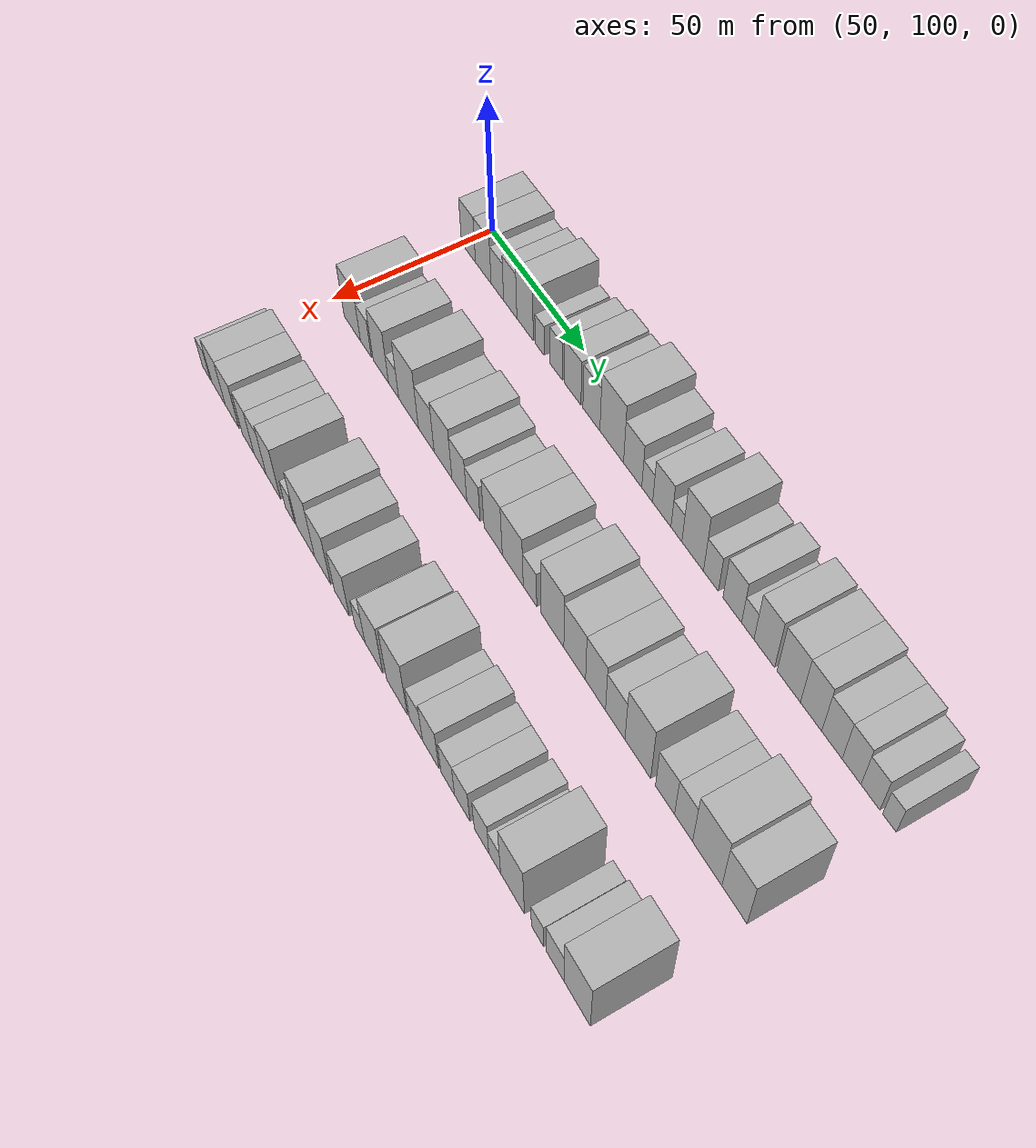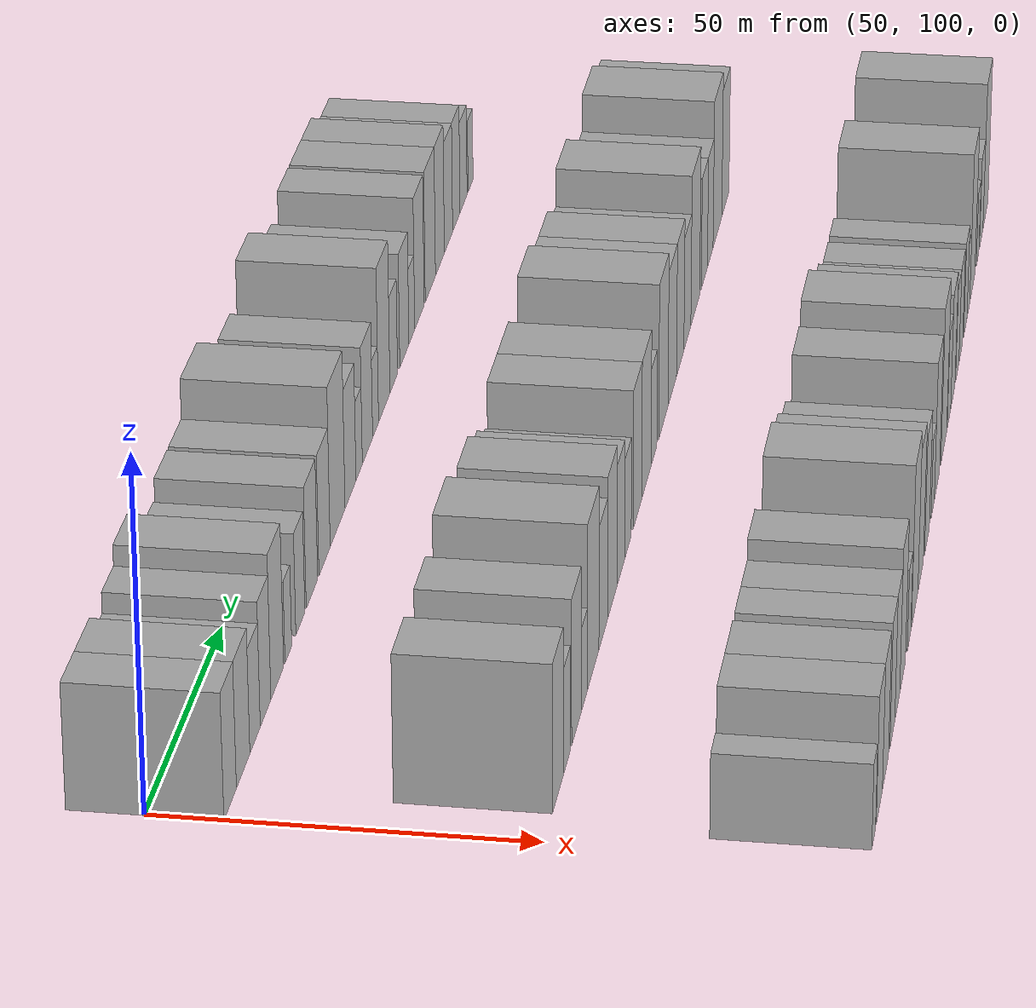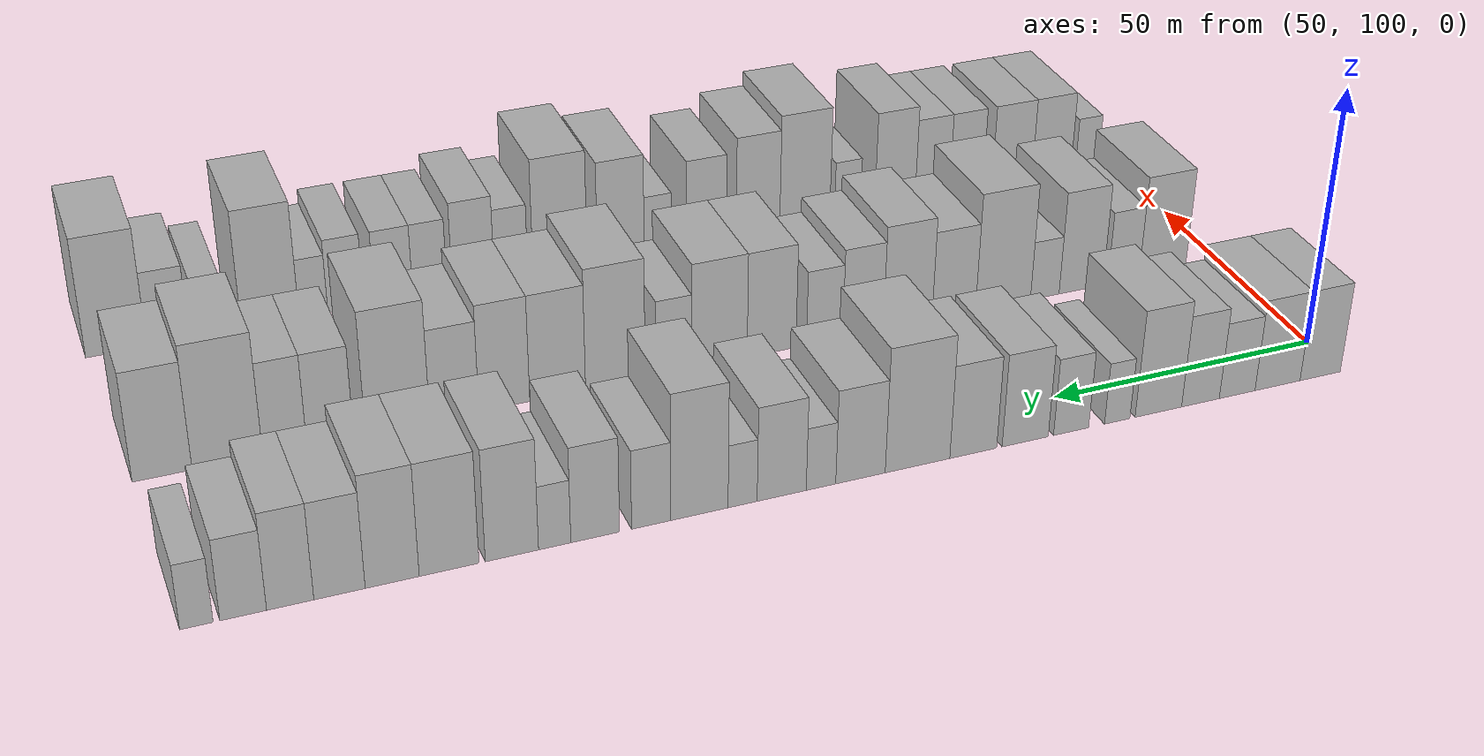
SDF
<sdf version="1.6">
 <world name="default">
  <model name="building_80">
   <static>1</static>
   <pose>50.0000 103.9029 0 0.000000 0.000000 0.000000</pose>
   <link name="link">
    <pose>0 0 9.00 0 0 0</pose>
    <collision name="collision"><geometry><box><size>20.0000 8.0969 18.0000</size></box></geometry></collision>
    <visual name="visual">
     <cast_shadows>0</cast_shadows>
     <geometry><box><size>20.0000 8.0969 18.0000</size></box></geometry>
     <material>
      <script>
       <uri>model://HANNAS_wall/materials/scripts</uri>
       <uri>model://HANNAS_wall/materials/textures</uri>
       <name>vrc/HANNAS_wall</name>
      </script>
     </material>
    </visual>
   </link>
  </model>
  <model name="building_81">
   <static>1</static>
   <pose>50.0000 112.4204 0 0.000000 0.000000 0.000000</pose>
   <link name="link">
    <pose>0 0 9.00 0 0 0</pose>
    <collision name="collision"><geometry><box><size>20.0000 8.9381 18.0000</size></box></geometry></collision>
    <visual name="visual">
     <cast_shadows>0</cast_shadows>
     <geometry><box><size>20.0000 8.9381 18.0000</size></box></geometry>
     <material>
      <script>
       <uri>model://HANNAS_wall/materials/scripts</uri>
       <uri>model://HANNAS_wall/materials/textures</uri>
       <name>vrc/HANNAS_wall</name>
      </script>
     </material>
    </visual>
   </link>
  </model>
  <model name="building_82">
   <static>1</static>
   <pose>50.0000 120.3972 0 0.000000 0.000000 0.000000</pose>
   <link name="link">
    <pose>0 0 7.50 0 0 0</pose>
    <collision name="collision"><geometry><box><size>20.0000 7.0154 15.0000</size></box></geometry></collision>
    <visual name="visual">
     <cast_shadows>0</cast_shadows>
     <geometry><box><size>20.0000 7.0154 15.0000</size></box></geometry>
     <material>
      <script>
       <uri>model://HANNAS_wall/materials/scripts</uri>
       <uri>model://HANNAS_wall/materials/textures</uri>
       <name>vrc/HANNAS_wall</name>
      </script>
     </material>
    </visual>
   </link>
  </model>
  <model name="building_83">
   <static>1</static>
   <pose>50.0000 127.5667 0 0.000000 0.000000 0.000000</pose>
   <link name="link">
    <pose>0 0 9.00 0 0 0</pose>
    <collision name="collision"><geometry><box><size>20.0000 7.3236 18.0000</size></box></geometry></collision>
    <visual name="visual">
     <cast_shadows>0</cast_shadows>
     <geometry><box><size>20.0000 7.3236 18.0000</size></box></geometry>
     <material>
      <script>
       <uri>model://HANNAS_wall/materials/scripts</uri>
       <uri>model://HANNAS_wall/materials/textures</uri>
       <name>vrc/HANNAS_wall</name>
      </script>
     </material>
    </visual>
   </link>
  </model>
  <model name="building_84">
   <static>1</static>
   <pose>50.0000 135.6924 0 0.000000 0.000000 0.000000</pose>
   <link name="link">
    <pose>0 0 10.50 0 0 0</pose>
    <collision name="collision"><geometry><box><size>20.0000 8.9279 21.0000</size></box></geometry></collision>
    <visual name="visual">
     <cast_shadows>0</cast_shadows>
     <geometry><box><size>20.0000 8.9279 21.0000</size></box></geometry>
     <material>
      <script>
       <uri>model://HANNAS_wall/materials/scripts</uri>
       <uri>model://HANNAS_wall/materials/textures</uri>
       <name>vrc/HANNAS_wall</name>
      </script>
     </material>
    </visual>
   </link>
  </model>
  <model name="building_85">
   <static>1</static>
   <pose>50.0000 143.5604 0 0.000000 0.000000 0.000000</pose>
   <link name="link">
    <pose>0 0 6.00 0 0 0</pose>
    <collision name="collision"><geometry><box><size>20.0000 4.8081 12.0000</size></box></geometry></collision>
    <visual name="visual">
     <cast_shadows>0</cast_shadows>
     <geometry><box><size>20.0000 4.8081 12.0000</size></box></geometry>
     <material>
      <script>
       <uri>model://HANNAS_wall/materials/scripts</uri>
       <uri>model://HANNAS_wall/materials/textures</uri>
       <name>vrc/HANNAS_wall</name>
      </script>
     </material>
    </visual>
   </link>
  </model>
  <model name="building_86">
   <static>1</static>
   <pose>50.0000 152.2506 0 0.000000 0.000000 0.000000</pose>
   <link name="link">
    <pose>0 0 7.50 0 0 0</pose>
    <collision name="collision"><geometry><box><size>20.0000 6.5722 15.0000</size></box></geometry></collision>
    <visual name="visual">
     <cast_shadows>0</cast_shadows>
     <geometry><box><size>20.0000 6.5722 15.0000</size></box></geometry>
     <material>
      <script>
       <uri>model://HANNAS_wall/materials/scripts</uri>
       <uri>model://HANNAS_wall/materials/textures</uri>
       <name>vrc/HANNAS_wall</name>
      </script>
     </material>
    </visual>
   </link>
  </model>
  <model name="building_87">
   <static>1</static>
   <pose>50.0000 160.8027 0 0.000000 0.000000 0.000000</pose>
   <link name="link">
    <pose>0 0 9.00 0 0 0</pose>
    <collision name="collision"><geometry><box><size>20.0000 8.5320 18.0000</size></box></geometry></collision>
    <visual name="visual">
     <cast_shadows>0</cast_shadows>
     <geometry><box><size>20.0000 8.5320 18.0000</size></box></geometry>
     <material>
      <script>
       <uri>model://HANNAS_wall/materials/scripts</uri>
       <uri>model://HANNAS_wall/materials/textures</uri>
       <name>vrc/HANNAS_wall</name>
      </script>
     </material>
    </visual>
   </link>
  </model>
  <model name="building_88">
   <static>1</static>
   <pose>50.0000 170.3459 0 0.000000 0.000000 0.000000</pose>
   <link name="link">
    <pose>0 0 9.00 0 0 0</pose>
    <collision name="collision"><geometry><box><size>20.0000 8.5544 18.0000</size></box></geometry></collision>
    <visual name="visual">
     <cast_shadows>0</cast_shadows>
     <geometry><box><size>20.0000 8.5544 18.0000</size></box></geometry>
     <material>
      <script>
       <uri>model://HANNAS_wall/materials/scripts</uri>
       <uri>model://HANNAS_wall/materials/textures</uri>
       <name>vrc/HANNAS_wall</name>
      </script>
     </material>
    </visual>
   </link>
  </model>
  <model name="building_89">
   <static>1</static>
   <pose>50.0000 180.4316 0 0.000000 0.000000 0.000000</pose>
   <link name="link">
    <pose>0 0 12.00 0 0 0</pose>
    <collision name="collision"><geometry><box><size>20.0000 11.6170 24.0000</size></box></geometry></collision>
    <visual name="visual">
     <cast_shadows>0</cast_shadows>
     <geometry><box><size>20.0000 11.6170 24.0000</size></box></geometry>
     <material>
      <script>
       <uri>model://HANNAS_wall/materials/scripts</uri>
       <uri>model://HANNAS_wall/materials/textures</uri>
       <name>vrc/HANNAS_wall</name>
      </script>
     </material>
    </visual>
   </link>
  </model>
  <model name="building_90">
   <static>1</static>
   <pose>50.0000 190.6179 0 0.000000 0.000000 0.000000</pose>
   <link name="link">
    <pose>0 0 9.00 0 0 0</pose>
    <collision name="collision"><geometry><box><size>20.0000 8.7555 18.0000</size></box></geometry></collision>
    <visual name="visual">
     <cast_shadows>0</cast_shadows>
     <geometry><box><size>20.0000 8.7555 18.0000</size></box></geometry>
     <material>
      <script>
       <uri>model://HANNAS_wall/materials/scripts</uri>
       <uri>model://HANNAS_wall/materials/textures</uri>
       <name>vrc/HANNAS_wall</name>
      </script>
     </material>
    </visual>
   </link>
  </model>
  <model name="building_91">
   <static>1</static>
   <pose>50.0000 197.5797 0 0.000000 0.000000 0.000000</pose>
   <link name="link">
    <pose>0 0 6.00 0 0 0</pose>
    <collision name="collision"><geometry><box><size>20.0000 5.1681 12.0000</size></box></geometry></collision>
    <visual name="visual">
     <cast_shadows>0</cast_shadows>
     <geometry><box><size>20.0000 5.1681 12.0000</size></box></geometry>
     <material>
      <script>
       <uri>model://HANNAS_wall/materials/scripts</uri>
       <uri>model://HANNAS_wall/materials/textures</uri>
       <name>vrc/HANNAS_wall</name>
      </script>
     </material>
    </visual>
   </link>
  </model>
  <model name="building_92">
   <static>1</static>
   <pose>50.0000 204.4167 0 0.000000 0.000000 0.000000</pose>
   <link name="link">
    <pose>0 0 9.00 0 0 0</pose>
    <collision name="collision"><geometry><box><size>20.0000 8.5059 18.0000</size></box></geometry></collision>
    <visual name="visual">
     <cast_shadows>0</cast_shadows>
     <geometry><box><size>20.0000 8.5059 18.0000</size></box></geometry>
     <material>
      <script>
       <uri>model://HANNAS_wall/materials/scripts</uri>
       <uri>model://HANNAS_wall/materials/textures</uri>
       <name>vrc/HANNAS_wall</name>
      </script>
     </material>
    </visual>
   </link>
  </model>
  <model name="building_93">
   <static>1</static>
   <pose>50.0000 211.1625 0 0.000000 0.000000 0.000000</pose>
   <link name="link">
    <pose>0 0 6.00 0 0 0</pose>
    <collision name="collision"><geometry><box><size>20.0000 4.9856 12.0000</size></box></geometry></collision>
    <visual name="visual">
     <cast_shadows>0</cast_shadows>
     <geometry><box><size>20.0000 4.9856 12.0000</size></box></geometry>
     <material>
      <script>
       <uri>model://HANNAS_wall/materials/scripts</uri>
       <uri>model://HANNAS_wall/materials/textures</uri>
       <name>vrc/HANNAS_wall</name>
      </script>
     </material>
    </visual>
   </link>
  </model>
  <model name="building_94">
   <static>1</static>
   <pose>50.0000 218.5174 0 0.000000 0.000000 0.000000</pose>
   <link name="link">
    <pose>0 0 12.00 0 0 0</pose>
    <collision name="collision"><geometry><box><size>20.0000 9.7241 24.0000</size></box></geometry></collision>
    <visual name="visual">
     <cast_shadows>0</cast_shadows>
     <geometry><box><size>20.0000 9.7241 24.0000</size></box></geometry>
     <material>
      <script>
       <uri>model://HANNAS_wall/materials/scripts</uri>
       <uri>model://HANNAS_wall/materials/textures</uri>
       <name>vrc/HANNAS_wall</name>
      </script>
     </material>
    </visual>
   </link>
  </model>
  <model name="building_95">
   <static>1</static>
   <pose>50.0000 226.6545 0 0.000000 0.000000 0.000000</pose>
   <link name="link">
    <pose>0 0 7.50 0 0 0</pose>
    <collision name="collision"><geometry><box><size>20.0000 6.5501 15.0000</size></box></geometry></collision>
    <visual name="visual">
     <cast_shadows>0</cast_shadows>
     <geometry><box><size>20.0000 6.5501 15.0000</size></box></geometry>
     <material>
      <script>
       <uri>model://HANNAS_wall/materials/scripts</uri>
       <uri>model://HANNAS_wall/materials/textures</uri>
       <name>vrc/HANNAS_wall</name>
      </script>
     </material>
    </visual>
   </link>
  </model>
  <model name="building_96">
   <static>1</static>
   <pose>50.0000 235.9510 0 0.000000 0.000000 0.000000</pose>
   <link name="link">
    <pose>0 0 9.00 0 0 0</pose>
    <collision name="collision"><geometry><box><size>20.0000 8.0430 18.0000</size></box></geometry></collision>
    <visual name="visual">
     <cast_shadows>0</cast_shadows>
     <geometry><box><size>20.0000 8.0430 18.0000</size></box></geometry>
     <material>
      <script>
       <uri>model://HANNAS_wall/materials/scripts</uri>
       <uri>model://HANNAS_wall/materials/textures</uri>
       <name>vrc/HANNAS_wall</name>
      </script>
     </material>
    </visual>
   </link>
  </model>
  <model name="building_97">
   <static>1</static>
   <pose>50.0000 242.6083 0 0.000000 0.000000 0.000000</pose>
   <link name="link">
    <pose>0 0 6.00 0 0 0</pose>
    <collision name="collision"><geometry><box><size>20.0000 5.2716 12.0000</size></box></geometry></collision>
    <visual name="visual">
     <cast_shadows>0</cast_shadows>
     <geometry><box><size>20.0000 5.2716 12.0000</size></box></geometry>
     <material>
      <script>
       <uri>model://HANNAS_wall/materials/scripts</uri>
       <uri>model://HANNAS_wall/materials/textures</uri>
       <name>vrc/HANNAS_wall</name>
      </script>
     </material>
    </visual>
   </link>
  </model>
  <model name="building_98">
   <static>1</static>
   <pose>50.0000 249.5502 0 0.000000 0.000000 0.000000</pose>
   <link name="link">
    <pose>0 0 10.50 0 0 0</pose>
    <collision name="collision"><geometry><box><size>20.0000 8.6123 21.0000</size></box></geometry></collision>
    <visual name="visual">
     <cast_shadows>0</cast_shadows>
     <geometry><box><size>20.0000 8.6123 21.0000</size></box></geometry>
     <material>
      <script>
       <uri>model://HANNAS_wall/materials/scripts</uri>
       <uri>model://HANNAS_wall/materials/textures</uri>
       <name>vrc/HANNAS_wall</name>
      </script>
     </material>
    </visual>
   </link>
  </model>
  <model name="building_99">
   <static>1</static>
   <pose>50.0000 259.6073 0 0.000000 0.000000 0.000000</pose>
   <link name="link">
    <pose>0 0 10.50 0 0 0</pose>
    <collision name="collision"><geometry><box><size>20.0000 9.5017 21.0000</size></box></geometry></collision>
    <visual name="visual">
     <cast_shadows>0</cast_shadows>
     <geometry><box><size>20.0000 9.5017 21.0000</size></box></geometry>
     <material>
      <script>
       <uri>model://HANNAS_wall/materials/scripts</uri>
       <uri>model://HANNAS_wall/materials/textures</uri>
       <name>vrc/HANNAS_wall</name>
      </script>
     </material>
    </visual>
   </link>
  </model>
  <model name="building_100">
   <static>1</static>
   <pose>50.0000 268.5921 0 0.000000 0.000000 0.000000</pose>
   <link name="link">
    <pose>0 0 10.50 0 0 0</pose>
    <collision name="collision"><geometry><box><size>20.0000 8.4681 21.0000</size></box></geometry></collision>
    <visual name="visual">
     <cast_shadows>0</cast_shadows>
     <geometry><box><size>20.0000 8.4681 21.0000</size></box></geometry>
     <material>
      <script>
       <uri>model://HANNAS_wall/materials/scripts</uri>
       <uri>model://HANNAS_wall/materials/textures</uri>
       <name>vrc/HANNAS_wall</name>
      </script>
     </material>
    </visual>
   </link>
  </model>
  <model name="building_101">
   <static>1</static>
   <pose>50.0000 276.7973 0 0.000000 0.000000 0.000000</pose>
   <link name="link">
    <pose>0 0 9.00 0 0 0</pose>
    <collision name="collision"><geometry><box><size>20.0000 7.9422 18.0000</size></box></geometry></collision>
    <visual name="visual">
     <cast_shadows>0</cast_shadows>
     <geometry><box><size>20.0000 7.9422 18.0000</size></box></geometry>
     <material>
      <script>
       <uri>model://HANNAS_wall/materials/scripts</uri>
       <uri>model://HANNAS_wall/materials/textures</uri>
       <name>vrc/HANNAS_wall</name>
      </script>
     </material>
    </visual>
   </link>
  </model>
  <model name="building_102">
   <static>1</static>
   <pose>50.0000 284.3769 0 0.000000 0.000000 0.000000</pose>
   <link name="link">
    <pose>0 0 9.00 0 0 0</pose>
    <collision name="collision"><geometry><box><size>20.0000 7.2170 18.0000</size></box></geometry></collision>
    <visual name="visual">
     <cast_shadows>0</cast_shadows>
     <geometry><box><size>20.0000 7.2170 18.0000</size></box></geometry>
     <material>
      <script>
       <uri>model://HANNAS_wall/materials/scripts</uri>
       <uri>model://HANNAS_wall/materials/textures</uri>
       <name>vrc/HANNAS_wall</name>
      </script>
     </material>
    </visual>
   </link>
  </model>
  <model name="building_103">
   <static>1</static>
   <pose>50.0000 291.5182 0 0.000000 0.000000 0.000000</pose>
   <link name="link">
    <pose>0 0 7.50 0 0 0</pose>
    <collision name="collision"><geometry><box><size>20.0000 7.0656 15.0000</size></box></geometry></collision>
    <visual name="visual">
     <cast_shadows>0</cast_shadows>
     <geometry><box><size>20.0000 7.0656 15.0000</size></box></geometry>
     <material>
      <script>
       <uri>model://HANNAS_wall/materials/scripts</uri>
       <uri>model://HANNAS_wall/materials/textures</uri>
       <name>vrc/HANNAS_wall</name>
      </script>
     </material>
    </visual>
   </link>
  </model>
  <model name="building_104">
   <static>1</static>
   <pose>50.0000 298.5626 0 0.000000 0.000000 0.000000</pose>
   <link name="link">
    <pose>0 0 6.00 0 0 0</pose>
    <collision name="collision"><geometry><box><size>20.0000 5.0233 12.0000</size></box></geometry></collision>
    <visual name="visual">
     <cast_shadows>0</cast_shadows>
     <geometry><box><size>20.0000 5.0233 12.0000</size></box></geometry>
     <material>
      <script>
       <uri>model://HANNAS_wall/materials/scripts</uri>
       <uri>model://HANNAS_wall/materials/textures</uri>
       <name>vrc/HANNAS_wall</name>
      </script>
     </material>
    </visual>
   </link>
  </model>
  <model name="building_225">
   <static>1</static>
   <pose>90.0000 112.0714 0 0.000000 0.000000 0.000000</pose>
   <link name="link">
    <pose>0 0 10.50 0 0 0</pose>
    <collision name="collision"><geometry><box><size>20.0000 9.7932 21.0000</size></box></geometry></collision>
    <visual name="visual">
     <cast_shadows>0</cast_shadows>
     <geometry><box><size>20.0000 9.7932 21.0000</size></box></geometry>
     <material>
      <script>
       <uri>model://HANNAS_wall/materials/scripts</uri>
       <uri>model://HANNAS_wall/materials/textures</uri>
       <name>vrc/HANNAS_wall</name>
      </script>
     </material>
    </visual>
   </link>
  </model>
  <model name="building_226">
   <static>1</static>
   <pose>90.0000 120.2188 0 0.000000 0.000000 0.000000</pose>
   <link name="link">
    <pose>0 0 7.50 0 0 0</pose>
    <collision name="collision"><geometry><box><size>20.0000 6.5017 15.0000</size></box></geometry></collision>
    <visual name="visual">
     <cast_shadows>0</cast_shadows>
     <geometry><box><size>20.0000 6.5017 15.0000</size></box></geometry>
     <material>
      <script>
       <uri>model://HANNAS_wall/materials/scripts</uri>
       <uri>model://HANNAS_wall/materials/textures</uri>
       <name>vrc/HANNAS_wall</name>
      </script>
     </material>
    </visual>
   </link>
  </model>
  <model name="building_227">
   <static>1</static>
   <pose>90.0000 128.9702 0 0.000000 0.000000 0.000000</pose>
   <link name="link">
    <pose>0 0 10.50 0 0 0</pose>
    <collision name="collision"><geometry><box><size>20.0000 9.0011 21.0000</size></box></geometry></collision>
    <visual name="visual">
     <cast_shadows>0</cast_shadows>
     <geometry><box><size>20.0000 9.0011 21.0000</size></box></geometry>
     <material>
      <script>
       <uri>model://HANNAS_wall/materials/scripts</uri>
       <uri>model://HANNAS_wall/materials/textures</uri>
       <name>vrc/HANNAS_wall</name>
      </script>
     </material>
    </visual>
   </link>
  </model>
  <model name="building_228">
   <static>1</static>
   <pose>90.0000 136.3896 0 0.000000 0.000000 0.000000</pose>
   <link name="link">
    <pose>0 0 6.00 0 0 0</pose>
    <collision name="collision"><geometry><box><size>20.0000 5.8376 12.0000</size></box></geometry></collision>
    <visual name="visual">
     <cast_shadows>0</cast_shadows>
     <geometry><box><size>20.0000 5.8376 12.0000</size></box></geometry>
     <material>
      <script>
       <uri>model://HANNAS_wall/materials/scripts</uri>
       <uri>model://HANNAS_wall/materials/textures</uri>
       <name>vrc/HANNAS_wall</name>
      </script>
     </material>
    </visual>
   </link>
  </model>
  <model name="building_229">
   <static>1</static>
   <pose>90.0000 144.8521 0 0.000000 0.000000 0.000000</pose>
   <link name="link">
    <pose>0 0 12.00 0 0 0</pose>
    <collision name="collision"><geometry><box><size>20.0000 11.0876 24.0000</size></box></geometry></collision>
    <visual name="visual">
     <cast_shadows>0</cast_shadows>
     <geometry><box><size>20.0000 11.0876 24.0000</size></box></geometry>
     <material>
      <script>
       <uri>model://HANNAS_wall/materials/scripts</uri>
       <uri>model://HANNAS_wall/materials/textures</uri>
       <name>vrc/HANNAS_wall</name>
      </script>
     </material>
    </visual>
   </link>
  </model>
  <model name="building_230">
   <static>1</static>
   <pose>90.0000 154.7160 0 0.000000 0.000000 0.000000</pose>
   <link name="link">
    <pose>0 0 9.00 0 0 0</pose>
    <collision name="collision"><geometry><box><size>20.0000 8.6401 18.0000</size></box></geometry></collision>
    <visual name="visual">
     <cast_shadows>0</cast_shadows>
     <geometry><box><size>20.0000 8.6401 18.0000</size></box></geometry>
     <material>
      <script>
       <uri>model://HANNAS_wall/materials/scripts</uri>
       <uri>model://HANNAS_wall/materials/textures</uri>
       <name>vrc/HANNAS_wall</name>
      </script>
     </material>
    </visual>
   </link>
  </model>
  <model name="building_231">
   <static>1</static>
   <pose>90.0000 163.8327 0 0.000000 0.000000 0.000000</pose>
   <link name="link">
    <pose>0 0 10.50 0 0 0</pose>
    <collision name="collision"><geometry><box><size>20.0000 9.5933 21.0000</size></box></geometry></collision>
    <visual name="visual">
     <cast_shadows>0</cast_shadows>
     <geometry><box><size>20.0000 9.5933 21.0000</size></box></geometry>
     <material>
      <script>
       <uri>model://HANNAS_wall/materials/scripts</uri>
       <uri>model://HANNAS_wall/materials/textures</uri>
       <name>vrc/HANNAS_wall</name>
      </script>
     </material>
    </visual>
   </link>
  </model>
  <model name="building_232">
   <static>1</static>
   <pose>90.0000 172.5607 0 0.000000 0.000000 0.000000</pose>
   <link name="link">
    <pose>0 0 9.00 0 0 0</pose>
    <collision name="collision"><geometry><box><size>20.0000 7.8627 18.0000</size></box></geometry></collision>
    <visual name="visual">
     <cast_shadows>0</cast_shadows>
     <geometry><box><size>20.0000 7.8627 18.0000</size></box></geometry>
     <material>
      <script>
       <uri>model://HANNAS_wall/materials/scripts</uri>
       <uri>model://HANNAS_wall/materials/textures</uri>
       <name>vrc/HANNAS_wall</name>
      </script>
     </material>
    </visual>
   </link>
  </model>
  <model name="building_233">
   <static>1</static>
   <pose>90.0000 179.9666 0 0.000000 0.000000 0.000000</pose>
   <link name="link">
    <pose>0 0 7.50 0 0 0</pose>
    <collision name="collision"><geometry><box><size>20.0000 6.9492 15.0000</size></box></geometry></collision>
    <visual name="visual">
     <cast_shadows>0</cast_shadows>
     <geometry><box><size>20.0000 6.9492 15.0000</size></box></geometry>
     <material>
      <script>
       <uri>model://HANNAS_wall/materials/scripts</uri>
       <uri>model://HANNAS_wall/materials/textures</uri>
       <name>vrc/HANNAS_wall</name>
      </script>
     </material>
    </visual>
   </link>
  </model>
  <model name="building_234">
   <static>1</static>
   <pose>90.0000 190.0520 0 0.000000 0.000000 0.000000</pose>
   <link name="link">
    <pose>0 0 10.50 0 0 0</pose>
    <collision name="collision"><geometry><box><size>20.0000 9.2215 21.0000</size></box></geometry></collision>
    <visual name="visual">
     <cast_shadows>0</cast_shadows>
     <geometry><box><size>20.0000 9.2215 21.0000</size></box></geometry>
     <material>
      <script>
       <uri>model://HANNAS_wall/materials/scripts</uri>
       <uri>model://HANNAS_wall/materials/textures</uri>
       <name>vrc/HANNAS_wall</name>
      </script>
     </material>
    </visual>
   </link>
  </model>
  <model name="building_235">
   <static>1</static>
   <pose>90.0000 199.8379 0 0.000000 0.000000 0.000000</pose>
   <link name="link">
    <pose>0 0 10.50 0 0 0</pose>
    <collision name="collision"><geometry><box><size>20.0000 10.3503 21.0000</size></box></geometry></collision>
    <visual name="visual">
     <cast_shadows>0</cast_shadows>
     <geometry><box><size>20.0000 10.3503 21.0000</size></box></geometry>
     <material>
      <script>
       <uri>model://HANNAS_wall/materials/scripts</uri>
       <uri>model://HANNAS_wall/materials/textures</uri>
       <name>vrc/HANNAS_wall</name>
      </script>
     </material>
    </visual>
   </link>
  </model>
  <model name="building_236">
   <static>1</static>
   <pose>90.0000 208.2974 0 0.000000 0.000000 0.000000</pose>
   <link name="link">
    <pose>0 0 7.50 0 0 0</pose>
    <collision name="collision"><geometry><box><size>20.0000 6.5687 15.0000</size></box></geometry></collision>
    <visual name="visual">
     <cast_shadows>0</cast_shadows>
     <geometry><box><size>20.0000 6.5687 15.0000</size></box></geometry>
     <material>
      <script>
       <uri>model://HANNAS_wall/materials/scripts</uri>
       <uri>model://HANNAS_wall/materials/textures</uri>
       <name>vrc/HANNAS_wall</name>
      </script>
     </material>
    </visual>
   </link>
  </model>
  <model name="building_237">
   <static>1</static>
   <pose>90.0000 218.9971 0 0.000000 0.000000 0.000000</pose>
   <link name="link">
    <pose>0 0 12.00 0 0 0</pose>
    <collision name="collision"><geometry><box><size>20.0000 10.8307 24.0000</size></box></geometry></collision>
    <visual name="visual">
     <cast_shadows>0</cast_shadows>
     <geometry><box><size>20.0000 10.8307 24.0000</size></box></geometry>
     <material>
      <script>
       <uri>model://HANNAS_wall/materials/scripts</uri>
       <uri>model://HANNAS_wall/materials/textures</uri>
       <name>vrc/HANNAS_wall</name>
      </script>
     </material>
    </visual>
   </link>
  </model>
  <model name="building_238">
   <static>1</static>
   <pose>90.0000 229.4042 0 0.000000 0.000000 0.000000</pose>
   <link name="link">
    <pose>0 0 10.50 0 0 0</pose>
    <collision name="collision"><geometry><box><size>20.0000 9.9834 21.0000</size></box></geometry></collision>
    <visual name="visual">
     <cast_shadows>0</cast_shadows>
     <geometry><box><size>20.0000 9.9834 21.0000</size></box></geometry>
     <material>
      <script>
       <uri>model://HANNAS_wall/materials/scripts</uri>
       <uri>model://HANNAS_wall/materials/textures</uri>
       <name>vrc/HANNAS_wall</name>
      </script>
     </material>
    </visual>
   </link>
  </model>
  <model name="building_239">
   <static>1</static>
   <pose>90.0000 238.8770 0 0.000000 0.000000 0.000000</pose>
   <link name="link">
    <pose>0 0 10.50 0 0 0</pose>
    <collision name="collision"><geometry><box><size>20.0000 8.9622 21.0000</size></box></geometry></collision>
    <visual name="visual">
     <cast_shadows>0</cast_shadows>
     <geometry><box><size>20.0000 8.9622 21.0000</size></box></geometry>
     <material>
      <script>
       <uri>model://HANNAS_wall/materials/scripts</uri>
       <uri>model://HANNAS_wall/materials/textures</uri>
       <name>vrc/HANNAS_wall</name>
      </script>
     </material>
    </visual>
   </link>
  </model>
  <model name="building_240">
   <static>1</static>
   <pose>90.0000 247.6311 0 0.000000 0.000000 0.000000</pose>
   <link name="link">
    <pose>0 0 9.00 0 0 0</pose>
    <collision name="collision"><geometry><box><size>20.0000 8.5460 18.0000</size></box></geometry></collision>
    <visual name="visual">
     <cast_shadows>0</cast_shadows>
     <geometry><box><size>20.0000 8.5460 18.0000</size></box></geometry>
     <material>
      <script>
       <uri>model://HANNAS_wall/materials/scripts</uri>
       <uri>model://HANNAS_wall/materials/textures</uri>
       <name>vrc/HANNAS_wall</name>
      </script>
     </material>
    </visual>
   </link>
  </model>
  <model name="building_241">
   <static>1</static>
   <pose>90.0000 257.4433 0 0.000000 0.000000 0.000000</pose>
   <link name="link">
    <pose>0 0 12.00 0 0 0</pose>
    <collision name="collision"><geometry><box><size>20.0000 11.0785 24.0000</size></box></geometry></collision>
    <visual name="visual">
     <cast_shadows>0</cast_shadows>
     <geometry><box><size>20.0000 11.0785 24.0000</size></box></geometry>
     <material>
      <script>
       <uri>model://HANNAS_wall/materials/scripts</uri>
       <uri>model://HANNAS_wall/materials/textures</uri>
       <name>vrc/HANNAS_wall</name>
      </script>
     </material>
    </visual>
   </link>
  </model>
  <model name="building_242">
   <static>1</static>
   <pose>90.0000 268.9469 0 0.000000 0.000000 0.000000</pose>
   <link name="link">
    <pose>0 0 9.00 0 0 0</pose>
    <collision name="collision"><geometry><box><size>20.0000 7.9287 18.0000</size></box></geometry></collision>
    <visual name="visual">
     <cast_shadows>0</cast_shadows>
     <geometry><box><size>20.0000 7.9287 18.0000</size></box></geometry>
     <material>
      <script>
       <uri>model://HANNAS_wall/materials/scripts</uri>
       <uri>model://HANNAS_wall/materials/textures</uri>
       <name>vrc/HANNAS_wall</name>
      </script>
     </material>
    </visual>
   </link>
  </model>
  <model name="building_243">
   <static>1</static>
   <pose>90.0000 276.5913 0 0.000000 0.000000 0.000000</pose>
   <link name="link">
    <pose>0 0 9.00 0 0 0</pose>
    <collision name="collision"><geometry><box><size>20.0000 7.3600 18.0000</size></box></geometry></collision>
    <visual name="visual">
     <cast_shadows>0</cast_shadows>
     <geometry><box><size>20.0000 7.3600 18.0000</size></box></geometry>
     <material>
      <script>
       <uri>model://HANNAS_wall/materials/scripts</uri>
       <uri>model://HANNAS_wall/materials/textures</uri>
       <name>vrc/HANNAS_wall</name>
      </script>
     </material>
    </visual>
   </link>
  </model>
  <model name="building_244">
   <static>1</static>
   <pose>90.0000 286.0987 0 0.000000 0.000000 0.000000</pose>
   <link name="link">
    <pose>0 0 12.00 0 0 0</pose>
    <collision name="collision"><geometry><box><size>20.0000 11.6549 24.0000</size></box></geometry></collision>
    <visual name="visual">
     <cast_shadows>0</cast_shadows>
     <geometry><box><size>20.0000 11.6549 24.0000</size></box></geometry>
     <material>
      <script>
       <uri>model://HANNAS_wall/materials/scripts</uri>
       <uri>model://HANNAS_wall/materials/textures</uri>
       <name>vrc/HANNAS_wall</name>
      </script>
     </material>
    </visual>
   </link>
  </model>
  <model name="building_245">
   <static>1</static>
   <pose>90.0000 296.7962 0 0.000000 0.000000 0.000000</pose>
   <link name="link">
    <pose>0 0 10.50 0 0 0</pose>
    <collision name="collision"><geometry><box><size>20.0000 9.7401 21.0000</size></box></geometry></collision>
    <visual name="visual">
     <cast_shadows>0</cast_shadows>
     <geometry><box><size>20.0000 9.7401 21.0000</size></box></geometry>
     <material>
      <script>
       <uri>model://HANNAS_wall/materials/scripts</uri>
       <uri>model://HANNAS_wall/materials/textures</uri>
       <name>vrc/HANNAS_wall</name>
      </script>
     </material>
    </visual>
   </link>
  </model>
  <model name="building_362">
   <static>1</static>
   <pose>130.0000 106.2994 0 0.000000 0.000000 0.000000</pose>
   <link name="link">
    <pose>0 0 6.00 0 0 0</pose>
    <collision name="collision"><geometry><box><size>20.0000 5.1623 12.0000</size></box></geometry></collision>
    <visual name="visual">
     <cast_shadows>0</cast_shadows>
     <geometry><box><size>20.0000 5.1623 12.0000</size></box></geometry>
     <material>
      <script>
       <uri>model://HANNAS_wall/materials/scripts</uri>
       <uri>model://HANNAS_wall/materials/textures</uri>
       <name>vrc/HANNAS_wall</name>
      </script>
     </material>
    </visual>
   </link>
  </model>
  <model name="building_363">
   <static>1</static>
   <pose>130.0000 114.1879 0 0.000000 0.000000 0.000000</pose>
   <link name="link">
    <pose>0 0 9.00 0 0 0</pose>
    <collision name="collision"><geometry><box><size>20.0000 8.6148 18.0000</size></box></geometry></collision>
    <visual name="visual">
     <cast_shadows>0</cast_shadows>
     <geometry><box><size>20.0000 8.6148 18.0000</size></box></geometry>
     <material>
      <script>
       <uri>model://HANNAS_wall/materials/scripts</uri>
       <uri>model://HANNAS_wall/materials/textures</uri>
       <name>vrc/HANNAS_wall</name>
      </script>
     </material>
    </visual>
   </link>
  </model>
  <model name="building_364">
   <static>1</static>
   <pose>130.0000 122.8806 0 0.000000 0.000000 0.000000</pose>
   <link name="link">
    <pose>0 0 9.00 0 0 0</pose>
    <collision name="collision"><geometry><box><size>20.0000 8.7705 18.0000</size></box></geometry></collision>
    <visual name="visual">
     <cast_shadows>0</cast_shadows>
     <geometry><box><size>20.0000 8.7705 18.0000</size></box></geometry>
     <material>
      <script>
       <uri>model://HANNAS_wall/materials/scripts</uri>
       <uri>model://HANNAS_wall/materials/textures</uri>
       <name>vrc/HANNAS_wall</name>
      </script>
     </material>
    </visual>
   </link>
  </model>
  <model name="building_365">
   <static>1</static>
   <pose>130.0000 132.8842 0 0.000000 0.000000 0.000000</pose>
   <link name="link">
    <pose>0 0 9.00 0 0 0</pose>
    <collision name="collision"><geometry><box><size>20.0000 7.2368 18.0000</size></box></geometry></collision>
    <visual name="visual">
     <cast_shadows>0</cast_shadows>
     <geometry><box><size>20.0000 7.2368 18.0000</size></box></geometry>
     <material>
      <script>
       <uri>model://HANNAS_wall/materials/scripts</uri>
       <uri>model://HANNAS_wall/materials/textures</uri>
       <name>vrc/HANNAS_wall</name>
      </script>
     </material>
    </visual>
   </link>
  </model>
  <model name="building_366">
   <static>1</static>
   <pose>130.0000 140.1962 0 0.000000 0.000000 0.000000</pose>
   <link name="link">
    <pose>0 0 9.00 0 0 0</pose>
    <collision name="collision"><geometry><box><size>20.0000 7.3873 18.0000</size></box></geometry></collision>
    <visual name="visual">
     <cast_shadows>0</cast_shadows>
     <geometry><box><size>20.0000 7.3873 18.0000</size></box></geometry>
     <material>
      <script>
       <uri>model://HANNAS_wall/materials/scripts</uri>
       <uri>model://HANNAS_wall/materials/textures</uri>
       <name>vrc/HANNAS_wall</name>
      </script>
     </material>
    </visual>
   </link>
  </model>
  <model name="building_367">
   <static>1</static>
   <pose>130.0000 148.1721 0 0.000000 0.000000 0.000000</pose>
   <link name="link">
    <pose>0 0 10.50 0 0 0</pose>
    <collision name="collision"><geometry><box><size>20.0000 8.5644 21.0000</size></box></geometry></collision>
    <visual name="visual">
     <cast_shadows>0</cast_shadows>
     <geometry><box><size>20.0000 8.5644 21.0000</size></box></geometry>
     <material>
      <script>
       <uri>model://HANNAS_wall/materials/scripts</uri>
       <uri>model://HANNAS_wall/materials/textures</uri>
       <name>vrc/HANNAS_wall</name>
      </script>
     </material>
    </visual>
   </link>
  </model>
  <model name="building_368">
   <static>1</static>
   <pose>130.0000 158.1770 0 0.000000 0.000000 0.000000</pose>
   <link name="link">
    <pose>0 0 6.00 0 0 0</pose>
    <collision name="collision"><geometry><box><size>20.0000 5.4453 12.0000</size></box></geometry></collision>
    <visual name="visual">
     <cast_shadows>0</cast_shadows>
     <geometry><box><size>20.0000 5.4453 12.0000</size></box></geometry>
     <material>
      <script>
       <uri>model://HANNAS_wall/materials/scripts</uri>
       <uri>model://HANNAS_wall/materials/textures</uri>
       <name>vrc/HANNAS_wall</name>
      </script>
     </material>
    </visual>
   </link>
  </model>
  <model name="building_369">
   <static>1</static>
   <pose>130.0000 167.0792 0 0.000000 0.000000 0.000000</pose>
   <link name="link">
    <pose>0 0 12.00 0 0 0</pose>
    <collision name="collision"><geometry><box><size>20.0000 10.3592 24.0000</size></box></geometry></collision>
    <visual name="visual">
     <cast_shadows>0</cast_shadows>
     <geometry><box><size>20.0000 10.3592 24.0000</size></box></geometry>
     <material>
      <script>
       <uri>model://HANNAS_wall/materials/scripts</uri>
       <uri>model://HANNAS_wall/materials/textures</uri>
       <name>vrc/HANNAS_wall</name>
      </script>
     </material>
    </visual>
   </link>
  </model>
  <model name="building_370">
   <static>1</static>
   <pose>130.0000 176.7213 0 0.000000 0.000000 0.000000</pose>
   <link name="link">
    <pose>0 0 10.50 0 0 0</pose>
    <collision name="collision"><geometry><box><size>20.0000 8.9250 21.0000</size></box></geometry></collision>
    <visual name="visual">
     <cast_shadows>0</cast_shadows>
     <geometry><box><size>20.0000 8.9250 21.0000</size></box></geometry>
     <material>
      <script>
       <uri>model://HANNAS_wall/materials/scripts</uri>
       <uri>model://HANNAS_wall/materials/textures</uri>
       <name>vrc/HANNAS_wall</name>
      </script>
     </material>
    </visual>
   </link>
  </model>
  <model name="building_371">
   <static>1</static>
   <pose>130.0000 187.2309 0 0.000000 0.000000 0.000000</pose>
   <link name="link">
    <pose>0 0 9.00 0 0 0</pose>
    <collision name="collision"><geometry><box><size>20.0000 8.0942 18.0000</size></box></geometry></collision>
    <visual name="visual">
     <cast_shadows>0</cast_shadows>
     <geometry><box><size>20.0000 8.0942 18.0000</size></box></geometry>
     <material>
      <script>
       <uri>model://HANNAS_wall/materials/scripts</uri>
       <uri>model://HANNAS_wall/materials/textures</uri>
       <name>vrc/HANNAS_wall</name>
      </script>
     </material>
    </visual>
   </link>
  </model>
  <model name="building_372">
   <static>1</static>
   <pose>130.0000 196.9862 0 0.000000 0.000000 0.000000</pose>
   <link name="link">
    <pose>0 0 6.00 0 0 0</pose>
    <collision name="collision"><geometry><box><size>20.0000 5.4163 12.0000</size></box></geometry></collision>
    <visual name="visual">
     <cast_shadows>0</cast_shadows>
     <geometry><box><size>20.0000 5.4163 12.0000</size></box></geometry>
     <material>
      <script>
       <uri>model://HANNAS_wall/materials/scripts</uri>
       <uri>model://HANNAS_wall/materials/textures</uri>
       <name>vrc/HANNAS_wall</name>
      </script>
     </material>
    </visual>
   </link>
  </model>
  <model name="building_373">
   <static>1</static>
   <pose>130.0000 204.3173 0 0.000000 0.000000 0.000000</pose>
   <link name="link">
    <pose>0 0 10.50 0 0 0</pose>
    <collision name="collision"><geometry><box><size>20.0000 9.2459 21.0000</size></box></geometry></collision>
    <visual name="visual">
     <cast_shadows>0</cast_shadows>
     <geometry><box><size>20.0000 9.2459 21.0000</size></box></geometry>
     <material>
      <script>
       <uri>model://HANNAS_wall/materials/scripts</uri>
       <uri>model://HANNAS_wall/materials/textures</uri>
       <name>vrc/HANNAS_wall</name>
      </script>
     </material>
    </visual>
   </link>
  </model>
  <model name="building_374">
   <static>1</static>
   <pose>130.0000 216.2033 0 0.000000 0.000000 0.000000</pose>
   <link name="link">
    <pose>0 0 12.00 0 0 0</pose>
    <collision name="collision"><geometry><box><size>20.0000 10.5260 24.0000</size></box></geometry></collision>
    <visual name="visual">
     <cast_shadows>0</cast_shadows>
     <geometry><box><size>20.0000 10.5260 24.0000</size></box></geometry>
     <material>
      <script>
       <uri>model://HANNAS_wall/materials/scripts</uri>
       <uri>model://HANNAS_wall/materials/textures</uri>
       <name>vrc/HANNAS_wall</name>
      </script>
     </material>
    </visual>
   </link>
  </model>
  <model name="building_375">
   <static>1</static>
   <pose>130.0000 225.6940 0 0.000000 0.000000 0.000000</pose>
   <link name="link">
    <pose>0 0 7.50 0 0 0</pose>
    <collision name="collision"><geometry><box><size>20.0000 6.4555 15.0000</size></box></geometry></collision>
    <visual name="visual">
     <cast_shadows>0</cast_shadows>
     <geometry><box><size>20.0000 6.4555 15.0000</size></box></geometry>
     <material>
      <script>
       <uri>model://HANNAS_wall/materials/scripts</uri>
       <uri>model://HANNAS_wall/materials/textures</uri>
       <name>vrc/HANNAS_wall</name>
      </script>
     </material>
    </visual>
   </link>
  </model>
  <model name="building_376">
   <static>1</static>
   <pose>130.0000 232.9080 0 0.000000 0.000000 0.000000</pose>
   <link name="link">
    <pose>0 0 9.00 0 0 0</pose>
    <collision name="collision"><geometry><box><size>20.0000 7.9725 18.0000</size></box></geometry></collision>
    <visual name="visual">
     <cast_shadows>0</cast_shadows>
     <geometry><box><size>20.0000 7.9725 18.0000</size></box></geometry>
     <material>
      <script>
       <uri>model://HANNAS_wall/materials/scripts</uri>
       <uri>model://HANNAS_wall/materials/textures</uri>
       <name>vrc/HANNAS_wall</name>
      </script>
     </material>
    </visual>
   </link>
  </model>
  <model name="building_377">
   <static>1</static>
   <pose>130.0000 241.1327 0 0.000000 0.000000 0.000000</pose>
   <link name="link">
    <pose>0 0 7.50 0 0 0</pose>
    <collision name="collision"><geometry><box><size>20.0000 6.4768 15.0000</size></box></geometry></collision>
    <visual name="visual">
     <cast_shadows>0</cast_shadows>
     <geometry><box><size>20.0000 6.4768 15.0000</size></box></geometry>
     <material>
      <script>
       <uri>model://HANNAS_wall/materials/scripts</uri>
       <uri>model://HANNAS_wall/materials/textures</uri>
       <name>vrc/HANNAS_wall</name>
      </script>
     </material>
    </visual>
   </link>
  </model>
  <model name="building_378">
   <static>1</static>
   <pose>130.0000 247.9389 0 0.000000 0.000000 0.000000</pose>
   <link name="link">
    <pose>0 0 7.50 0 0 0</pose>
    <collision name="collision"><geometry><box><size>20.0000 7.1356 15.0000</size></box></geometry></collision>
    <visual name="visual">
     <cast_shadows>0</cast_shadows>
     <geometry><box><size>20.0000 7.1356 15.0000</size></box></geometry>
     <material>
      <script>
       <uri>model://HANNAS_wall/materials/scripts</uri>
       <uri>model://HANNAS_wall/materials/textures</uri>
       <name>vrc/HANNAS_wall</name>
      </script>
     </material>
    </visual>
   </link>
  </model>
  <model name="building_379">
   <static>1</static>
   <pose>130.0000 256.8218 0 0.000000 0.000000 0.000000</pose>
   <link name="link">
    <pose>0 0 7.50 0 0 0</pose>
    <collision name="collision"><geometry><box><size>20.0000 6.6302 15.0000</size></box></geometry></collision>
    <visual name="visual">
     <cast_shadows>0</cast_shadows>
     <geometry><box><size>20.0000 6.6302 15.0000</size></box></geometry>
     <material>
      <script>
       <uri>model://HANNAS_wall/materials/scripts</uri>
       <uri>model://HANNAS_wall/materials/textures</uri>
       <name>vrc/HANNAS_wall</name>
      </script>
     </material>
    </visual>
   </link>
  </model>
  <model name="building_380">
   <static>1</static>
   <pose>130.0000 262.7617 0 0.000000 0.000000 0.000000</pose>
   <link name="link">
    <pose>0 0 6.00 0 0 0</pose>
    <collision name="collision"><geometry><box><size>20.0000 5.2495 12.0000</size></box></geometry></collision>
    <visual name="visual">
     <cast_shadows>0</cast_shadows>
     <geometry><box><size>20.0000 5.2495 12.0000</size></box></geometry>
     <material>
      <script>
       <uri>model://HANNAS_wall/materials/scripts</uri>
       <uri>model://HANNAS_wall/materials/textures</uri>
       <name>vrc/HANNAS_wall</name>
      </script>
     </material>
    </visual>
   </link>
  </model>
  <model name="building_381">
   <static>1</static>
   <pose>130.0000 270.6193 0 0.000000 0.000000 0.000000</pose>
   <link name="link">
    <pose>0 0 12.00 0 0 0</pose>
    <collision name="collision"><geometry><box><size>20.0000 10.4656 24.0000</size></box></geometry></collision>
    <visual name="visual">
     <cast_shadows>0</cast_shadows>
     <geometry><box><size>20.0000 10.4656 24.0000</size></box></geometry>
     <material>
      <script>
       <uri>model://HANNAS_wall/materials/scripts</uri>
       <uri>model://HANNAS_wall/materials/textures</uri>
       <name>vrc/HANNAS_wall</name>
      </script>
     </material>
    </visual>
   </link>
  </model>
  <model name="building_382">
   <static>1</static>
   <pose>130.0000 281.4991 0 0.000000 0.000000 0.000000</pose>
   <link name="link">
    <pose>0 0 6.00 0 0 0</pose>
    <collision name="collision"><geometry><box><size>20.0000 5.2939 12.0000</size></box></geometry></collision>
    <visual name="visual">
     <cast_shadows>0</cast_shadows>
     <geometry><box><size>20.0000 5.2939 12.0000</size></box></geometry>
     <material>
      <script>
       <uri>model://HANNAS_wall/materials/scripts</uri>
       <uri>model://HANNAS_wall/materials/textures</uri>
       <name>vrc/HANNAS_wall</name>
      </script>
     </material>
    </visual>
   </link>
  </model>
  <model name="building_383">
   <static>1</static>
   <pose>130.0000 288.8771 0 0.000000 0.000000 0.000000</pose>
   <link name="link">
    <pose>0 0 7.50 0 0 0</pose>
    <collision name="collision"><geometry><box><size>20.0000 7.4622 15.0000</size></box></geometry></collision>
    <visual name="visual">
     <cast_shadows>0</cast_shadows>
     <geometry><box><size>20.0000 7.4622 15.0000</size></box></geometry>
     <material>
      <script>
       <uri>model://HANNAS_wall/materials/scripts</uri>
       <uri>model://HANNAS_wall/materials/textures</uri>
       <name>vrc/HANNAS_wall</name>
      </script>
     </material>
    </visual>
   </link>
  </model>
  <model name="building_384">
   <static>1</static>
   <pose>130.0000 297.9715 0 0.000000 0.000000 0.000000</pose>
   <link name="link">
    <pose>0 0 12.00 0 0 0</pose>
    <collision name="collision"><geometry><box><size>20.0000 10.7265 24.0000</size></box></geometry></collision>
    <visual name="visual">
     <cast_shadows>0</cast_shadows>
     <geometry><box><size>20.0000 10.7265 24.0000</size></box></geometry>
     <material>
      <script>
       <uri>model://HANNAS_wall/materials/scripts</uri>
       <uri>model://HANNAS_wall/materials/textures</uri>
       <name>vrc/HANNAS_wall</name>
      </script>
     </material>
    </visual>
   </link>
  </model>
 </world>
</sdf>
